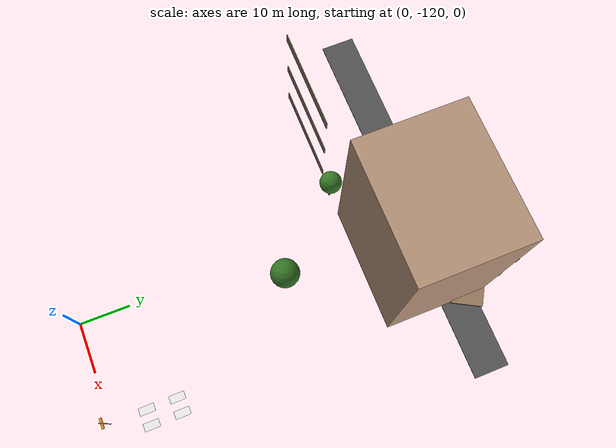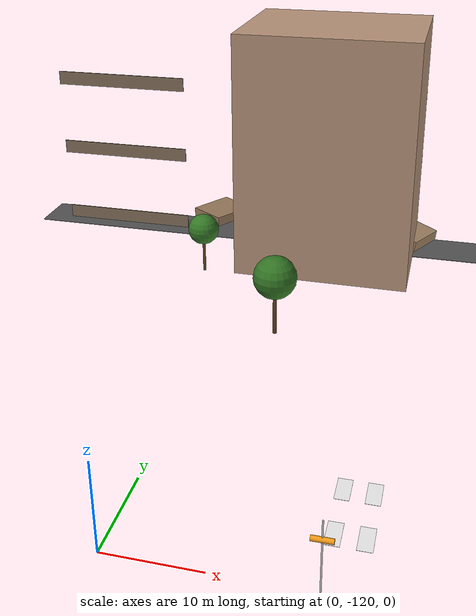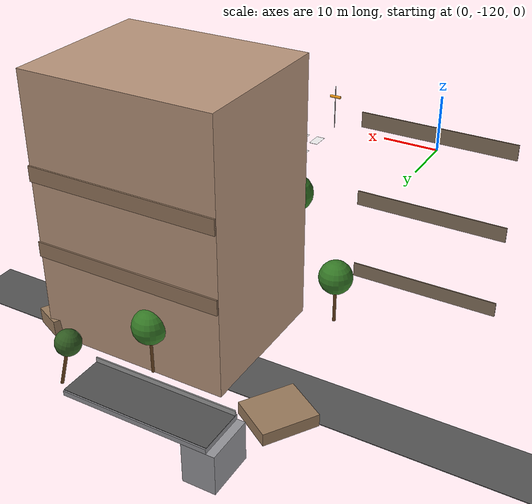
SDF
<sdf version="1.9">
 <world name="p110_world">
  <model name="road_ew_s">
   <static>true</static>
   <pose>0 -50 0.05 0 0 0</pose>
   <link name="link">
    <visual name="v">
     <geometry><box><size>260 7 0.08</size></box></geometry>
     <material>
      <ambient>0.27 0.27 0.27 1</ambient>
      <diffuse>0.33 0.33 0.33 1</diffuse>
      <specular>0.10 0.10 0.10 1</specular>
     </material>
    </visual>
   </link>
  </model>
  <model name="deb_s1">
   <static>true</static>
   <pose>-10 -45 0.8 0 0 1.0</pose>
   <link name="link">
    <collision name="c"><geometry><box><size>7 6 1.6</size></box></geometry></collision>
    <visual name="v">
     <geometry><box><size>7 6 1.6</size></box></geometry>
     <material><ambient>0.52 0.42 0.30 1</ambient><diffuse>0.60 0.48 0.36 1</diffuse></material>
    </visual>
   </link>
  </model>
  <model name="deb_s2">
   <static>true</static>
   <pose>22 -48 1.1 0 0.15 -0.5</pose>
   <link name="link">
    <collision name="c"><geometry><box><size>5 6 2</size></box></geometry></collision>
    <visual name="v">
     <geometry><box><size>5 6 2</size></box></geometry>
     <material><ambient>0.54 0.44 0.32 1</ambient><diffuse>0.62 0.50 0.38 1</diffuse></material>
    </visual>
   </link>
  </model>
  <model name="tr_ns1">
   <static>true</static>
   <pose>7 -80 0 0 0 0</pose>
   <link name="link">
    <visual name="t">
     <pose>0 0 3.0 0 0 0</pose>
     <geometry><cylinder><radius>0.25</radius><length>6</length></cylinder></geometry>
     <material><ambient>0.32 0.20 0.10 1</ambient><diffuse>0.38 0.25 0.12 1</diffuse></material>
    </visual>
    <visual name="c">
     <pose>0 0 8.0 0 0 0</pose>
     <geometry><sphere><radius>2.8</radius></sphere></geometry>
     <material><ambient>0.16 0.38 0.11 1</ambient><diffuse>0.20 0.46 0.14 1</diffuse></material>
    </visual>
   </link>
  </model>
  <model name="tr_ns2">
   <static>true</static>
   <pose>7 -45 0 0 0 0</pose>
   <link name="link">
    <visual name="t">
     <pose>0 0 2.5 0 0 0</pose>
     <geometry><cylinder><radius>0.20</radius><length>5</length></cylinder></geometry>
     <material><ambient>0.35 0.22 0.10 1</ambient><diffuse>0.42 0.27 0.13 1</diffuse></material>
    </visual>
    <visual name="c">
     <pose>0 0 6.6 0 0 0</pose>
     <geometry><sphere><radius>2.2</radius></sphere></geometry>
     <material><ambient>0.17 0.40 0.12 1</ambient><diffuse>0.21 0.48 0.15 1</diffuse></material>
    </visual>
   </link>
  </model>
  <model name="tr_ns5">
   <static>true</static>
   <pose>-7 -65 0 0 0 0</pose>
   <link name="link">
    <visual name="t">
     <pose>0 0 2.5 0 0 0</pose>
     <geometry><cylinder><radius>0.20</radius><length>5</length></cylinder></geometry>
     <material><ambient>0.35 0.22 0.10 1</ambient><diffuse>0.42 0.27 0.13 1</diffuse></material>
    </visual>
    <visual name="c">
     <pose>0 0 6.6 0 0 0</pose>
     <geometry><sphere><radius>2.2</radius></sphere></geometry>
     <material><ambient>0.17 0.40 0.12 1</ambient><diffuse>0.21 0.48 0.15 1</diffuse></material>
    </visual>
   </link>
  </model>
  <model name="tr_leaning2">
   <static>true</static>
   <pose>15 -38 0 0 -0.22 0.5</pose>
   <link name="link">
    <visual name="t">
     <pose>0 0 2.5 0 0 0</pose>
     <geometry><cylinder><radius>0.20</radius><length>5</length></cylinder></geometry>
     <material><ambient>0.34 0.21 0.10 1</ambient><diffuse>0.40 0.26 0.12 1</diffuse></material>
    </visual>
    <visual name="c">
     <pose>0 0 6.0 0 0 0</pose>
     <geometry><sphere><radius>1.6</radius></sphere></geometry>
     <material><ambient>0.15 0.30 0.10 1</ambient><diffuse>0.19 0.36 0.13 1</diffuse></material>
    </visual>
   </link>
  </model>
  <model name="rwy_thr_w1">
   <static>true</static>
   <pose>20 -107 0.10 0 0 0</pose>
   <link name="link">
    <visual name="v">
     <geometry><box><size>1.5 3 0.02</size></box></geometry>
     <material><ambient>0.95 0.95 0.95 1</ambient><diffuse>0.95 0.95 0.95 1</diffuse></material>
    </visual>
   </link>
  </model>
  <model name="rwy_thr_w2">
   <static>true</static>
   <pose>20 -113 0.10 0 0 0</pose>
   <link name="link">
    <visual name="v">
     <geometry><box><size>1.5 3 0.02</size></box></geometry>
     <material><ambient>0.95 0.95 0.95 1</ambient><diffuse>0.95 0.95 0.95 1</diffuse></material>
    </visual>
   </link>
  </model>
  <model name="rwy_thr_w3">
   <static>true</static>
   <pose>23 -107 0.10 0 0 0</pose>
   <link name="link">
    <visual name="v">
     <geometry><box><size>1.5 3 0.02</size></box></geometry>
     <material><ambient>0.95 0.95 0.95 1</ambient><diffuse>0.95 0.95 0.95 1</diffuse></material>
    </visual>
   </link>
  </model>
  <model name="rwy_thr_w4">
   <static>true</static>
   <pose>23 -113 0.10 0 0 0</pose>
   <link name="link">
    <visual name="v">
     <geometry><box><size>1.5 3 0.02</size></box></geometry>
     <material><ambient>0.95 0.95 0.95 1</ambient><diffuse>0.95 0.95 0.95 1</diffuse></material>
    </visual>
   </link>
  </model>
  <model name="windsock_pole">
   <static>true</static>
   <pose>20 -120 4 0 0 0</pose>
   <link name="link">
    <visual name="pole">
     <geometry><cylinder><radius>0.08</radius><length>8</length></cylinder></geometry>
     <material><ambient>0.75 0.75 0.75 1</ambient><diffuse>0.80 0.80 0.80 1</diffuse></material>
    </visual>
    <visual name="sock">
     <pose>0 0 2 0 1.5708 0</pose>
     <geometry><cylinder><radius>0.25</radius><length>2</length></cylinder></geometry>
     <material><ambient>0.90 0.55 0.05 1</ambient><diffuse>0.95 0.60 0.08 1</diffuse></material>
    </visual>
   </link>
  </model>
  <model name="bridge_abt_w">
   <static>true</static>
   <pose>-8 -35 2.5 0 0 0</pose>
   <link name="link">
    <collision name="c"><geometry><box><size>4 6 5</size></box></geometry></collision>
    <visual name="v">
     <geometry><box><size>4 6 5</size></box></geometry>
     <material>
      <ambient>0.50 0.50 0.52 1</ambient>
      <diffuse>0.58 0.58 0.60 1</diffuse>
      <specular>0.10 0.10 0.10 1</specular>
     </material>
    </visual>
   </link>
  </model>
  <model name="bridge_deck">
   <static>true</static>
   <pose>0 -35 5.3 0 0 0</pose>
   <link name="link">
    <collision name="c"><geometry><box><size>18 6 0.6</size></box></geometry></collision>
    <visual name="v">
     <geometry><box><size>18 6 0.6</size></box></geometry>
     <material>
      <ambient>0.48 0.48 0.50 1</ambient>
      <diffuse>0.56 0.56 0.58 1</diffuse>
      <specular>0.12 0.12 0.12 1</specular>
     </material>
    </visual>
   </link>
  </model>
  <model name="bridge_rail_s">
   <static>true</static>
   <pose>0 -37.7 5.95 0 0 0</pose>
   <link name="link">
    <collision name="c"><geometry><box><size>18 0.15 0.7</size></box></geometry></collision>
    <visual name="v">
     <geometry><box><size>18 0.15 0.7</size></box></geometry>
     <material><ambient>0.55 0.55 0.55 1</ambient><diffuse>0.62 0.62 0.62 1</diffuse></material>
    </visual>
   </link>
  </model>
  <model name="bridge_road">
   <static>true</static>
   <pose>0 -35 5.65 0 0 0</pose>
   <link name="link">
    <visual name="v">
     <geometry><box><size>18 5.7 0.06</size></box></geometry>
     <material><ambient>0.26 0.26 0.26 1</ambient><diffuse>0.32 0.32 0.32 1</diffuse></material>
    </visual>
   </link>
  </model>
  <model name="south_plaza">
   <static>true</static>
   <pose>10 -55 17.5 0 0 0</pose>
   <link name="link">
    <collision name="c"><geometry><box><size>25 20 35</size></box></geometry></collision>
    <visual name="main">
     <geometry><box><size>25 20 35</size></box></geometry>
     <material>
      <ambient>0.62 0.50 0.42 1</ambient>
      <diffuse>0.72 0.58 0.48 1</diffuse>
      <specular>0.12 0.10 0.10 1</specular>
     </material>
    </visual>
    <visual name="band1">
     <pose>0 10.2 -5 0 0 0</pose>
     <geometry><box><size>25 0.2 2</size></box></geometry>
     <material><ambient>0.50 0.40 0.32 1</ambient><diffuse>0.58 0.46 0.36 1</diffuse></material>
    </visual>
    <visual name="band2">
     <pose>0 10.2 5 0 0 0</pose>
     <geometry><box><size>25 0.2 2</size></box></geometry>
     <material><ambient>0.50 0.40 0.32 1</ambient><diffuse>0.58 0.46 0.36 1</diffuse></material>
    </visual>
   </link>
  </model>
  <model name="apt_win_n1">
   <static>true</static>
   <pose>-18 -65.9 8 0 0 0</pose>
   <link name="link">
    <visual name="v">
     <geometry><box><size>18 0.15 1.8</size></box></geometry>
     <material><ambient>0.44 0.38 0.32 1</ambient><diffuse>0.52 0.44 0.36 1</diffuse></material>
    </visual>
   </link>
  </model>
  <model name="apt_win_n2">
   <static>true</static>
   <pose>-18 -65.9 18 0 0 0</pose>
   <link name="link">
    <visual name="v">
     <geometry><box><size>18 0.15 1.8</size></box></geometry>
     <material><ambient>0.44 0.38 0.32 1</ambient><diffuse>0.52 0.44 0.36 1</diffuse></material>
    </visual>
   </link>
  </model>
  <model name="apt_win_n3">
   <static>true</static>
   <pose>-18 -65.9 28 0 0 0</pose>
   <link name="link">
    <visual name="v">
     <geometry><box><size>18 0.15 1.8</size></box></geometry>
     <material><ambient>0.44 0.38 0.32 1</ambient><diffuse>0.52 0.44 0.36 1</diffuse></material>
    </visual>
   </link>
  </model>
 </world>
</sdf>
